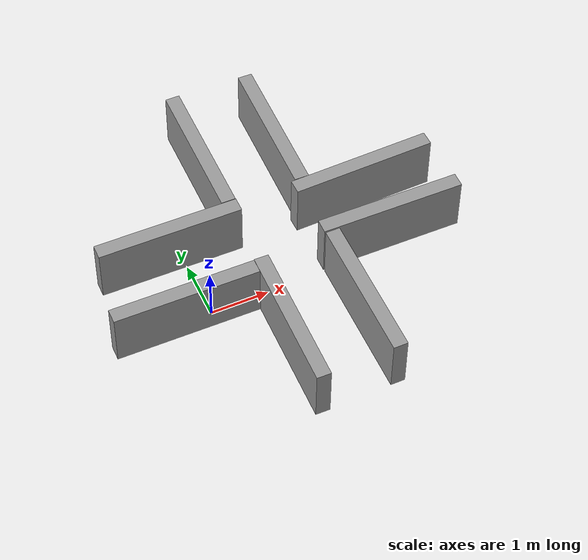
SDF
<sdf version="1.7">
 <world name="default">
  <light name="sun" type="directional">
   <pose>0 0 10 0 -0 0</pose>
   <diffuse>0.8 0.8 0.8 1</diffuse>
   <specular>0.2 0.2 0.2 1</specular>
   <attenuation>
    <range>1000</range>
    <constant>0.9</constant>
    <linear>0.01</linear>
    <quadratic>0.001</quadratic>
   </attenuation>
   <direction>-0.5 0.1 -0.9</direction>
   <spot><inner_angle>0</inner_angle><outer_angle>0</outer_angle><falloff>0</falloff></spot>
  </light>
  <model name="ground_plane">
   <static>1</static>
   <link name="link">
    <collision name="collision">
     <geometry><plane><normal>0 0 1</normal><size>100 100</size></plane></geometry>
     <surface>
      <contact><collide_bitmask>65535</collide_bitmask></contact>
      <friction><ode><mu>100</mu><mu2>50</mu2></ode></friction>
     </surface>
    </collision>
    <visual name="visual">
     <cast_shadows>0</cast_shadows>
     <geometry><plane><normal>0 0 1</normal><size>100 100</size></plane></geometry>
     <material>
      <script><uri>file://media/materials/scripts/gazebo.material</uri><name>Gazebo/Grey</name></script>
     </material>
    </visual>
   </link>
  </model>
  <gravity>0 0 -9.8</gravity>
  <magnetic_field>6e-06 2.3e-05 -4.2e-05</magnetic_field>
  <atmosphere type="adiabatic"/>
  <physics type="ode">
   <max_step_size>0.001</max_step_size>
   <real_time_factor>1</real_time_factor>
   <real_time_update_rate>1000</real_time_update_rate>
  </physics>
  <scene><ambient>0.4 0.4 0.4 1</ambient><background>0.7 0.7 0.7 1</background><shadows>1</shadows></scene>
  <spherical_coordinates>
   <surface_model>EARTH_WGS84</surface_model>
   <latitude_deg>0</latitude_deg>
   <longitude_deg>0</longitude_deg>
   <elevation>0</elevation>
   <heading_deg>0</heading_deg>
  </spherical_coordinates>
  <model name="unit_box">
   <pose>-0.555314 1.301 -18878.6 0.120649 0.058319 0.007066</pose>
   <link name="link">
    <inertial>
     <mass>1</mass>
     <inertia>
      <ixx>0.166667</ixx>
      <ixy>0</ixy>
      <ixz>0</ixz>
      <iyy>0.166667</iyy>
      <iyz>0</iyz>
      <izz>0.166667</izz>
     </inertia>
    </inertial>
    <collision name="collision"><geometry><box><size>0.000306934 314255 1</size></box></geometry></collision>
    <visual name="visual">
     <geometry><box><size>0.000306934 314255 1</size></box></geometry>
     <material>
      <script><name>Gazebo/Grey</name><uri>file://media/materials/scripts/gazebo.material</uri></script>
     </material>
    </visual>
   </link>
  </model>
  <model name="unit_box_clone_1">
   <pose>3.19175 1.12877 0.499944 -2e-06 4.6e-05 0.022992</pose>
   <link name="link">
    <inertial>
     <mass>1</mass>
     <inertia>
      <ixx>0.166667</ixx>
      <ixy>0</ixy>
      <ixz>0</ixz>
      <iyy>0.166667</iyy>
      <iyz>0</iyz>
      <izz>0.166667</izz>
     </inertia>
    </inertial>
    <collision name="collision"><geometry><box><size>2.45547 0.245014 1</size></box></geometry></collision>
    <visual name="visual">
     <geometry><box><size>2.45547 0.245014 1</size></box></geometry>
     <material>
      <script><name>Gazebo/Grey</name><uri>file://media/materials/scripts/gazebo.material</uri></script>
     </material>
    </visual>
   </link>
  </model>
  <model name="unit_box_clone_2">
   <pose>3.24342 0.161968 0.499944 -2e-06 4.6e-05 -0.01085</pose>
   <link name="link">
    <inertial>
     <mass>1</mass>
     <inertia>
      <ixx>0.166667</ixx>
      <ixy>0</ixy>
      <ixz>0</ixz>
      <iyy>0.166667</iyy>
      <iyz>0</iyz>
      <izz>0.166667</izz>
     </inertia>
    </inertial>
    <collision name="collision"><geometry><box><size>2.45547 0.245014 1</size></box></geometry></collision>
    <visual name="visual">
     <geometry><box><size>2.45547 0.245014 1</size></box></geometry>
     <material>
      <script><name>Gazebo/Grey</name><uri>file://media/materials/scripts/gazebo.material</uri></script>
     </material>
    </visual>
   </link>
  </model>
  <model name="unit_box_clone_3">
   <pose>2.14157 -1.20097 0.499944 2e-06 4.6e-05 -1.57382</pose>
   <link name="link">
    <inertial>
     <mass>1</mass>
     <inertia>
      <ixx>0.166667</ixx>
      <ixy>0</ixy>
      <ixz>0</ixz>
      <iyy>0.166667</iyy>
      <iyz>0</iyz>
      <izz>0.166667</izz>
     </inertia>
    </inertial>
    <collision name="collision"><geometry><box><size>2.45547 0.245014 1</size></box></geometry></collision>
    <visual name="visual">
     <geometry><box><size>2.45547 0.245014 1</size></box></geometry>
     <material>
      <script><name>Gazebo/Grey</name><uri>file://media/materials/scripts/gazebo.material</uri></script>
     </material>
    </visual>
   </link>
  </model>
  <model name="unit_box_clone_3_clone">
   <pose>2.18509 2.46056 0.499944 2e-06 -4.6e-05 -1.59361</pose>
   <link name="link">
    <inertial>
     <mass>1</mass>
     <inertia>
      <ixx>0.166667</ixx>
      <ixy>0</ixy>
      <ixz>0</ixz>
      <iyy>0.166667</iyy>
      <iyz>0</iyz>
      <izz>0.166667</izz>
     </inertia>
    </inertial>
    <collision name="collision"><geometry><box><size>2.45547 0.245014 1</size></box></geometry></collision>
    <visual name="visual">
     <geometry><box><size>2.45547 0.245014 1</size></box></geometry>
     <material>
      <script><name>Gazebo/Grey</name><uri>file://media/materials/scripts/gazebo.material</uri></script>
     </material>
    </visual>
   </link>
  </model>
  <model name="unit_box_clone_3_clone_0">
   <pose>0.880063 2.49934 0.499944 2e-06 4.6e-05 -1.58082</pose>
   <link name="link">
    <inertial>
     <mass>1</mass>
     <inertia>
      <ixx>0.166667</ixx>
      <ixy>0</ixy>
      <ixz>0</ixz>
      <iyy>0.166667</iyy>
      <iyz>0</iyz>
      <izz>0.166667</izz>
     </inertia>
    </inertial>
    <collision name="collision"><geometry><box><size>2.45547 0.245014 1</size></box></geometry></collision>
    <visual name="visual">
     <geometry><box><size>2.45547 0.245014 1</size></box></geometry>
     <material>
      <script><name>Gazebo/Grey</name><uri>file://media/materials/scripts/gazebo.material</uri></script>
     </material>
    </visual>
   </link>
  </model>
  <model name="unit_box_clone_3_clone_0_clone">
   <pose>0.857301 -1.2228 0.499944 2e-06 -4.6e-05 -1.59086</pose>
   <link name="link">
    <inertial>
     <mass>1</mass>
     <inertia>
      <ixx>0.166667</ixx>
      <ixy>0</ixy>
      <ixz>0</ixz>
      <iyy>0.166667</iyy>
      <iyz>0</iyz>
      <izz>0.166667</izz>
     </inertia>
    </inertial>
    <collision name="collision"><geometry><box><size>2.45547 0.245014 1</size></box></geometry></collision>
    <visual name="visual">
     <geometry><box><size>2.45547 0.245014 1</size></box></geometry>
     <material>
      <script><name>Gazebo/Grey</name><uri>file://media/materials/scripts/gazebo.material</uri></script>
     </material>
    </visual>
   </link>
  </model>
  <model name="unit_box_clone_2_clone">
   <pose>-0.472837 -0.114088 0.499944 2e-06 -4.6e-05 -0.010469</pose>
   <link name="link">
    <inertial>
     <mass>1</mass>
     <inertia>
      <ixx>0.166667</ixx>
      <ixy>0</ixy>
      <ixz>0</ixz>
      <iyy>0.166667</iyy>
      <iyz>0</iyz>
      <izz>0.166667</izz>
     </inertia>
    </inertial>
    <collision name="collision"><geometry><box><size>2.45547 0.245014 1</size></box></geometry></collision>
    <visual name="visual">
     <geometry><box><size>2.45547 0.245014 1</size></box></geometry>
     <material>
      <script><name>Gazebo/Grey</name><uri>file://media/materials/scripts/gazebo.material</uri></script>
     </material>
    </visual>
   </link>
  </model>
  <model name="unit_box_clone_2_clone_0">
   <pose>-0.234177 1.15199 0.499944 2e-06 -4.6e-05 -0.010848</pose>
   <link name="link">
    <inertial>
     <mass>1</mass>
     <inertia>
      <ixx>0.166667</ixx>
      <ixy>0</ixy>
      <ixz>0</ixz>
      <iyy>0.166667</iyy>
      <iyz>0</iyz>
      <izz>0.166667</izz>
     </inertia>
    </inertial>
    <collision name="collision"><geometry><box><size>2.45547 0.245014 1</size></box></geometry></collision>
    <visual name="visual">
     <geometry><box><size>2.45547 0.245014 1</size></box></geometry>
     <material>
      <script><name>Gazebo/Grey</name><uri>file://media/materials/scripts/gazebo.material</uri></script>
     </material>
    </visual>
   </link>
  </model>
 </world>
</sdf>
